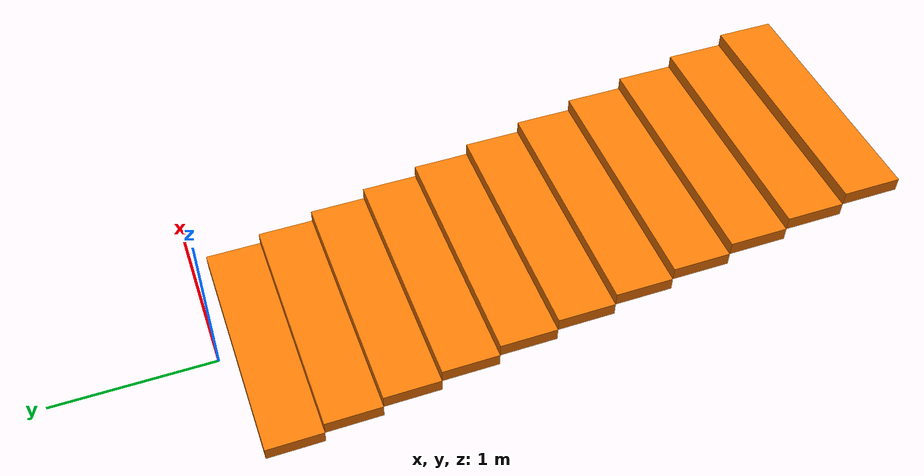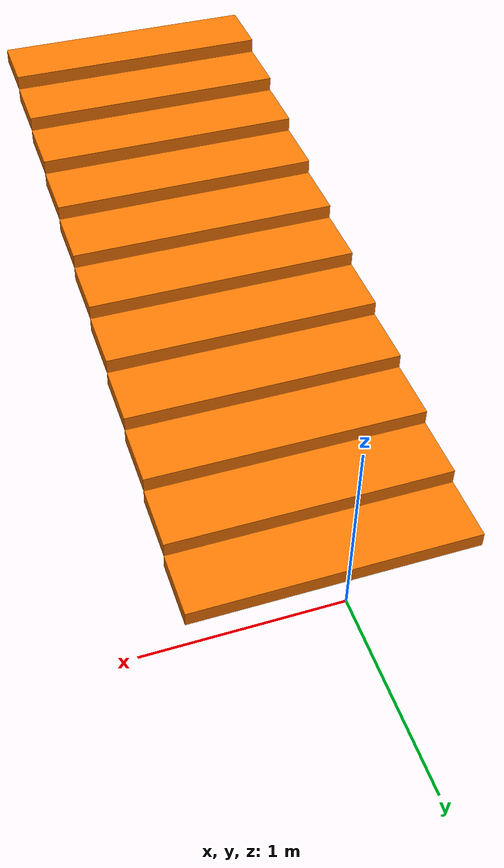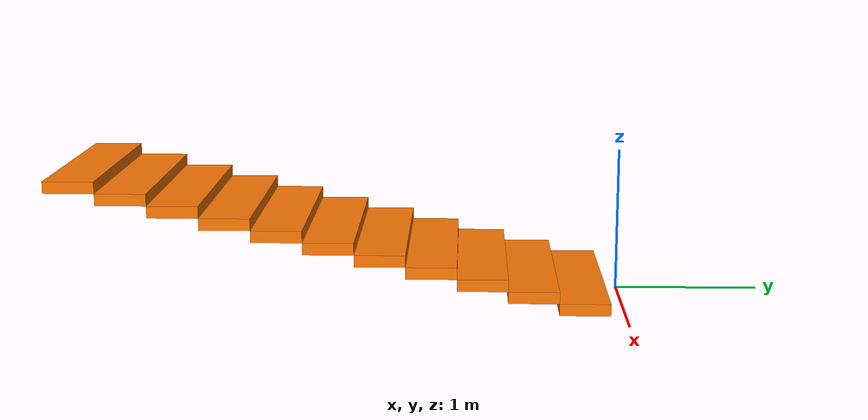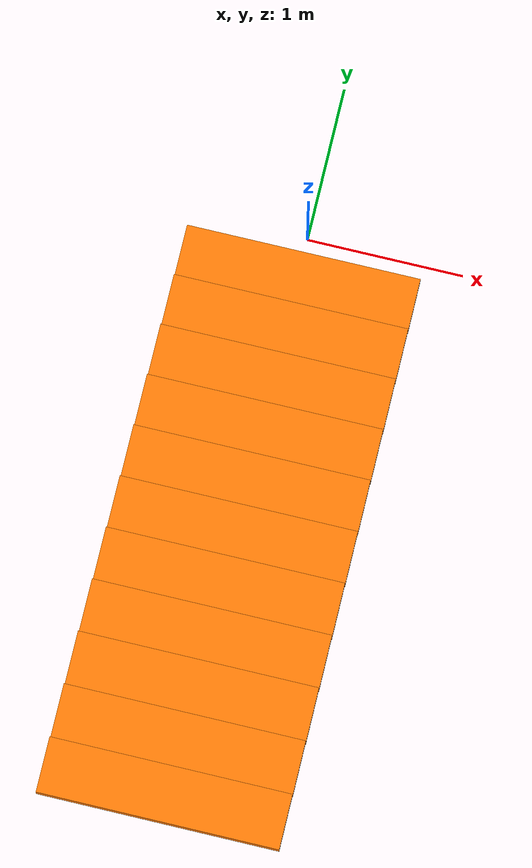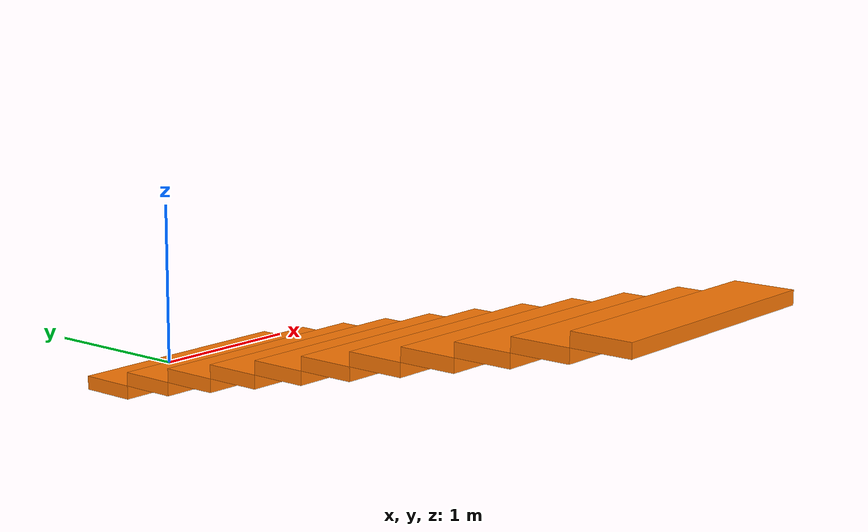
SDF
<?xml version='1.0'?>
<sdf version='1.6'>
  <model name='lol'>
    <pose frame=''>0 -2 0 0 -0 0</pose>
    <link name='Stairs_4'>
      <visual name='Stairs_4_Visual_0'>
        <pose frame=''>0 1.72727 0.040909 0 -0 0</pose>
        <geometry>
          <box>
            <size>1.5 0.345455 0.081818</size>
          </box>
        </geometry>
        <material>
          <script>
            <uri>file://media/materials/scripts/gazebo.material</uri>
            <name>Gazebo/Grey</name>
          </script>
          <ambient>0.996078 0.47451 0.0196078 1</ambient>
        </material>
        <meta>
          <layer>0</layer>
        </meta>
      </visual>
      <collision name='Stairs_4_Collision_0'>
        <geometry>
          <box>
            <size>1.5 0.345455 0.081818</size>
          </box>
        </geometry>
        <pose frame=''>0 1.72727 0.040909 0 -0 0</pose>
      </collision>
      <visual name='Stairs_4_Visual_1'>
        <pose frame=''>0 1.38182 0.122727 0 -0 0</pose>
        <geometry>
          <box>
            <size>1.5 0.345455 0.081818</size>
          </box>
        </geometry>
        <material>
          <script>
            <uri>file://media/materials/scripts/gazebo.material</uri>
            <name>Gazebo/Grey</name>
          </script>
          <ambient>0.996078 0.47451 0.0196078 1</ambient>
        </material>
        <meta>
          <layer>0</layer>
        </meta>
      </visual>
      <collision name='Stairs_4_Collision_1'>
        <geometry>
          <box>
            <size>1.5 0.345455 0.081818</size>
          </box>
        </geometry>
        <pose frame=''>0 1.38182 0.122727 0 -0 0</pose>
      </collision>
      <visual name='Stairs_4_Visual_2'>
        <pose frame=''>0 1.03636 0.204545 0 -0 0</pose>
        <geometry>
          <box>
            <size>1.5 0.345455 0.081818</size>
          </box>
        </geometry>
        <material>
          <script>
            <uri>file://media/materials/scripts/gazebo.material</uri>
            <name>Gazebo/Grey</name>
          </script>
          <ambient>0.996078 0.47451 0.0196078 1</ambient>
        </material>
        <meta>
          <layer>0</layer>
        </meta>
      </visual>
      <collision name='Stairs_4_Collision_2'>
        <geometry>
          <box>
            <size>1.5 0.345455 0.081818</size>
          </box>
        </geometry>
        <pose frame=''>0 1.03636 0.204545 0 -0 0</pose>
      </collision>
      <visual name='Stairs_4_Visual_3'>
        <pose frame=''>0 0.690909 0.286364 0 -0 0</pose>
        <geometry>
          <box>
            <size>1.5 0.345455 0.081818</size>
          </box>
        </geometry>
        <material>
          <script>
            <uri>file://media/materials/scripts/gazebo.material</uri>
            <name>Gazebo/Grey</name>
          </script>
          <ambient>0.996078 0.47451 0.0196078 1</ambient>
        </material>
        <meta>
          <layer>0</layer>
        </meta>
      </visual>
      <collision name='Stairs_4_Collision_3'>
        <geometry>
          <box>
            <size>1.5 0.345455 0.081818</size>
          </box>
        </geometry>
        <pose frame=''>0 0.690909 0.286364 0 -0 0</pose>
      </collision>
      <visual name='Stairs_4_Visual_4'>
        <pose frame=''>0 0.345455 0.368182 0 -0 0</pose>
        <geometry>
          <box>
            <size>1.5 0.345455 0.081818</size>
          </box>
        </geometry>
        <material>
          <script>
            <uri>file://media/materials/scripts/gazebo.material</uri>
            <name>Gazebo/Grey</name>
          </script>
          <ambient>0.996078 0.47451 0.0196078 1</ambient>
        </material>
        <meta>
          <layer>0</layer>
        </meta>
      </visual>
      <collision name='Stairs_4_Collision_4'>
        <geometry>
          <box>
            <size>1.5 0.345455 0.081818</size>
          </box>
        </geometry>
        <pose frame=''>0 0.345455 0.368182 0 -0 0</pose>
      </collision>
      <visual name='Stairs_4_Visual_5'>
        <pose frame=''>0 0 0.45 0 -0 0</pose>
        <geometry>
          <box>
            <size>1.5 0.345455 0.081818</size>
          </box>
        </geometry>
        <material>
          <script>
            <uri>file://media/materials/scripts/gazebo.material</uri>
            <name>Gazebo/Grey</name>
          </script>
          <ambient>0.996078 0.47451 0.0196078 1</ambient>
        </material>
        <meta>
          <layer>0</layer>
        </meta>
      </visual>
      <collision name='Stairs_4_Collision_5'>
        <geometry>
          <box>
            <size>1.5 0.345455 0.081818</size>
          </box>
        </geometry>
        <pose frame=''>0 0 0.45 0 -0 0</pose>
      </collision>
      <visual name='Stairs_4_Visual_6'>
        <pose frame=''>0 -0.345454 0.531818 0 -0 0</pose>
        <geometry>
          <box>
            <size>1.5 0.345455 0.081818</size>
          </box>
        </geometry>
        <material>
          <script>
            <uri>file://media/materials/scripts/gazebo.material</uri>
            <name>Gazebo/Grey</name>
          </script>
          <ambient>0.996078 0.47451 0.0196078 1</ambient>
        </material>
        <meta>
          <layer>0</layer>
        </meta>
      </visual>
      <collision name='Stairs_4_Collision_6'>
        <geometry>
          <box>
            <size>1.5 0.345455 0.081818</size>
          </box>
        </geometry>
        <pose frame=''>0 -0.345454 0.531818 0 -0 0</pose>
      </collision>
      <visual name='Stairs_4_Visual_7'>
        <pose frame=''>0 -0.690909 0.613636 0 -0 0</pose>
        <geometry>
          <box>
            <size>1.5 0.345455 0.081818</size>
          </box>
        </geometry>
        <material>
          <script>
            <uri>file://media/materials/scripts/gazebo.material</uri>
            <name>Gazebo/Grey</name>
          </script>
          <ambient>0.996078 0.47451 0.0196078 1</ambient>
        </material>
        <meta>
          <layer>0</layer>
        </meta>
      </visual>
      <collision name='Stairs_4_Collision_7'>
        <geometry>
          <box>
            <size>1.5 0.345455 0.081818</size>
          </box>
        </geometry>
        <pose frame=''>0 -0.690909 0.613636 0 -0 0</pose>
      </collision>
      <visual name='Stairs_4_Visual_8'>
        <pose frame=''>0 -1.03636 0.695455 0 -0 0</pose>
        <geometry>
          <box>
            <size>1.5 0.345455 0.081818</size>
          </box>
        </geometry>
        <material>
          <script>
            <uri>file://media/materials/scripts/gazebo.material</uri>
            <name>Gazebo/Grey</name>
          </script>
          <ambient>0.996078 0.47451 0.0196078 1</ambient>
        </material>
        <meta>
          <layer>0</layer>
        </meta>
      </visual>
      <collision name='Stairs_4_Collision_8'>
        <geometry>
          <box>
            <size>1.5 0.345455 0.081818</size>
          </box>
        </geometry>
        <pose frame=''>0 -1.03636 0.695455 0 -0 0</pose>
      </collision>
      <visual name='Stairs_4_Visual_9'>
        <pose frame=''>0 -1.38182 0.777273 0 -0 0</pose>
        <geometry>
          <box>
            <size>1.5 0.345455 0.081818</size>
          </box>
        </geometry>
        <material>
          <script>
            <uri>file://media/materials/scripts/gazebo.material</uri>
            <name>Gazebo/Grey</name>
          </script>
          <ambient>0.996078 0.47451 0.0196078 1</ambient>
        </material>
        <meta>
          <layer>0</layer>
        </meta>
      </visual>
      <collision name='Stairs_4_Collision_9'>
        <geometry>
          <box>
            <size>1.5 0.345455 0.081818</size>
          </box>
        </geometry>
        <pose frame=''>0 -1.38182 0.777273 0 -0 0</pose>
      </collision>
      <visual name='Stairs_4_Visual_10'>
        <pose frame=''>0 -1.72727 0.859091 0 -0 0</pose>
        <geometry>
          <box>
            <size>1.5 0.345455 0.081818</size>
          </box>
        </geometry>
        <material>
          <script>
            <uri>file://media/materials/scripts/gazebo.material</uri>
            <name>Gazebo/Grey</name>
          </script>
          <ambient>0.996078 0.47451 0.0196078 1</ambient>
        </material>
        <meta>
          <layer>0</layer>
        </meta>
      </visual>
      <collision name='Stairs_4_Collision_10'>
        <geometry>
          <box>
            <size>1.5 0.345455 0.081818</size>
          </box>
        </geometry>
        <pose frame=''>0 -1.72727 0.859091 0 -0 0</pose>
      </collision>
    </link>
    <static>1</static>
  </model>
</sdf>
